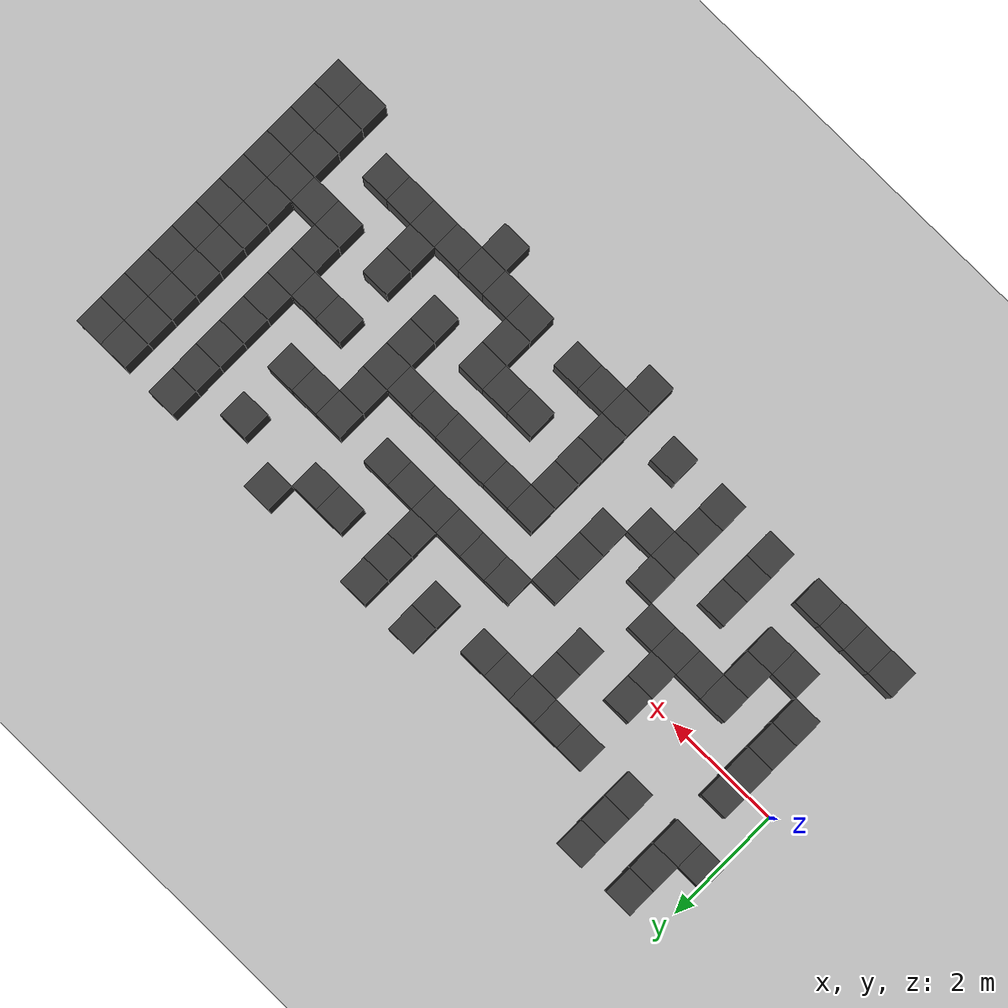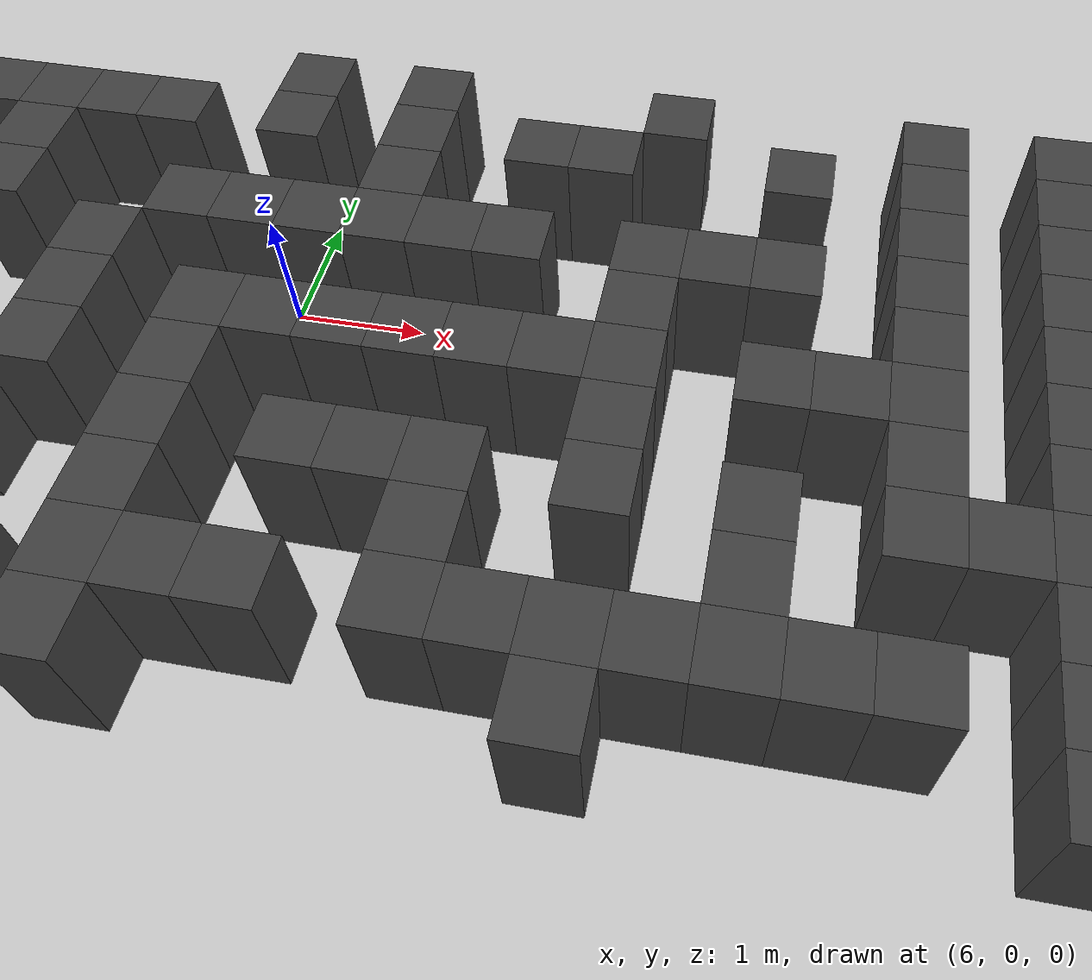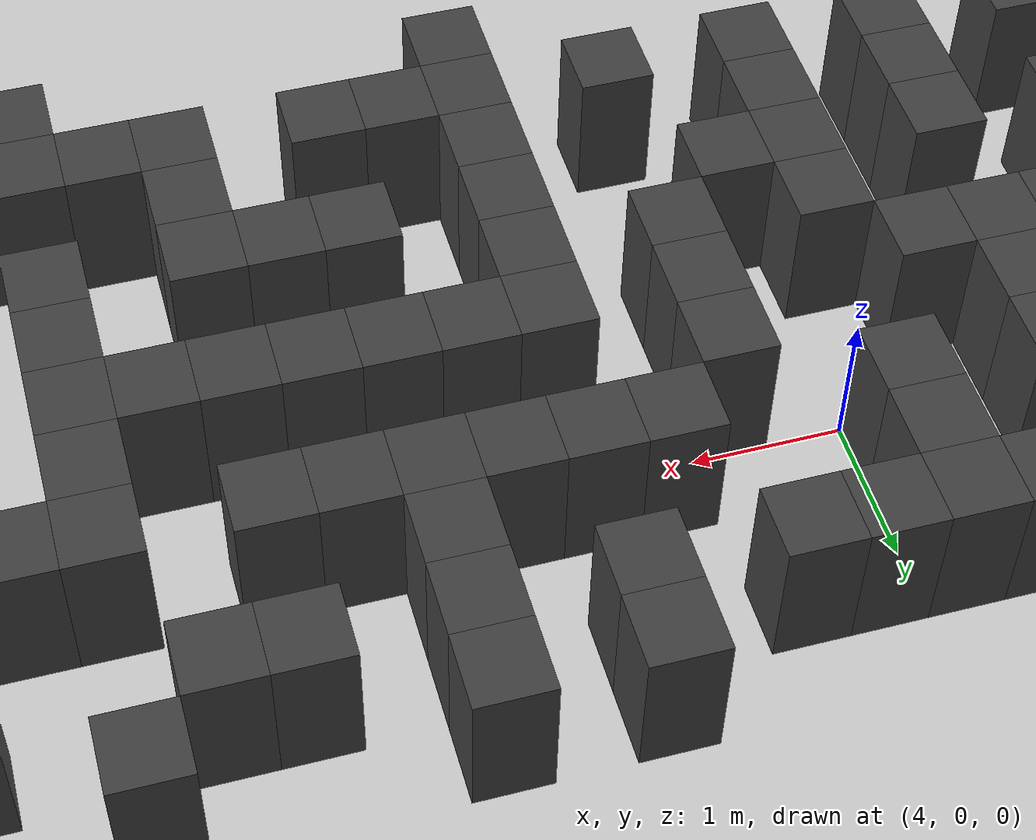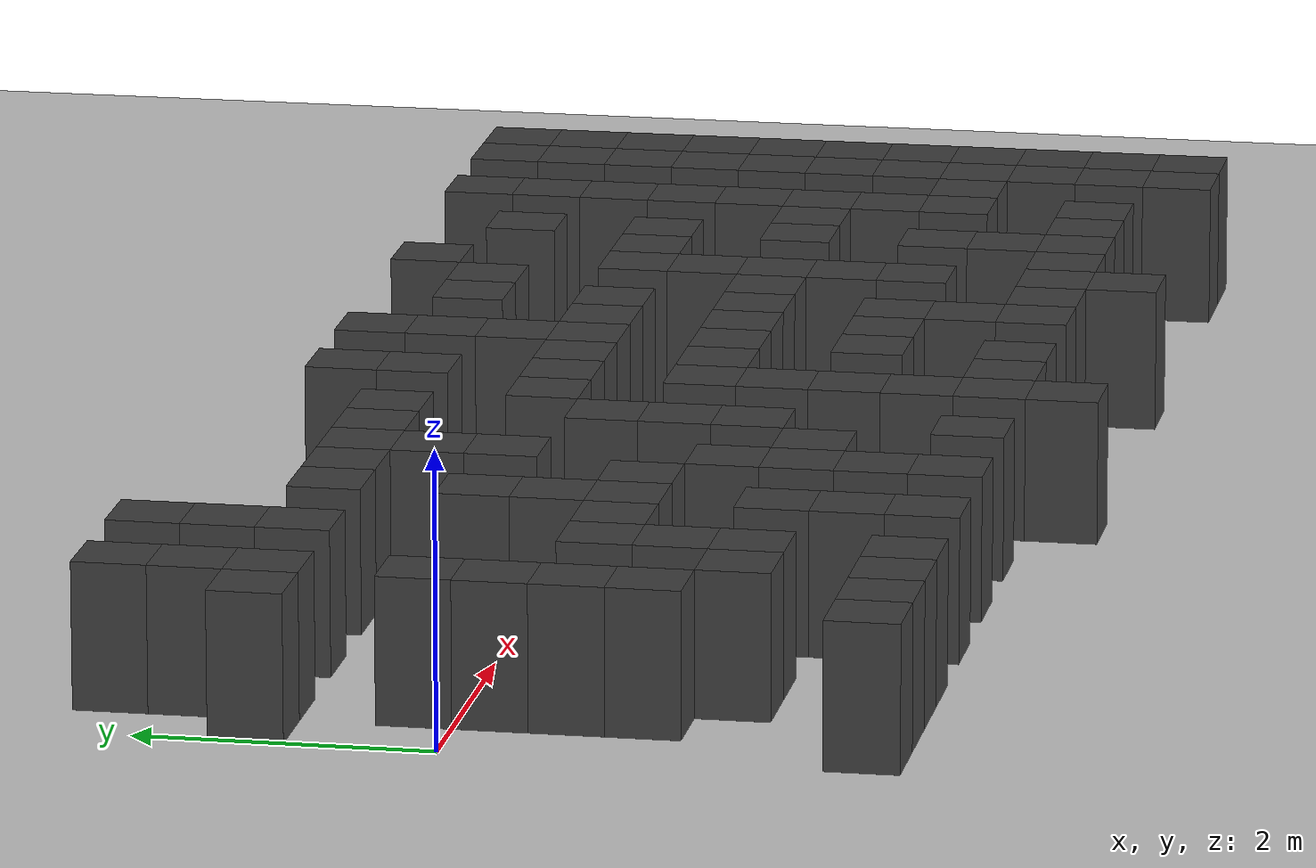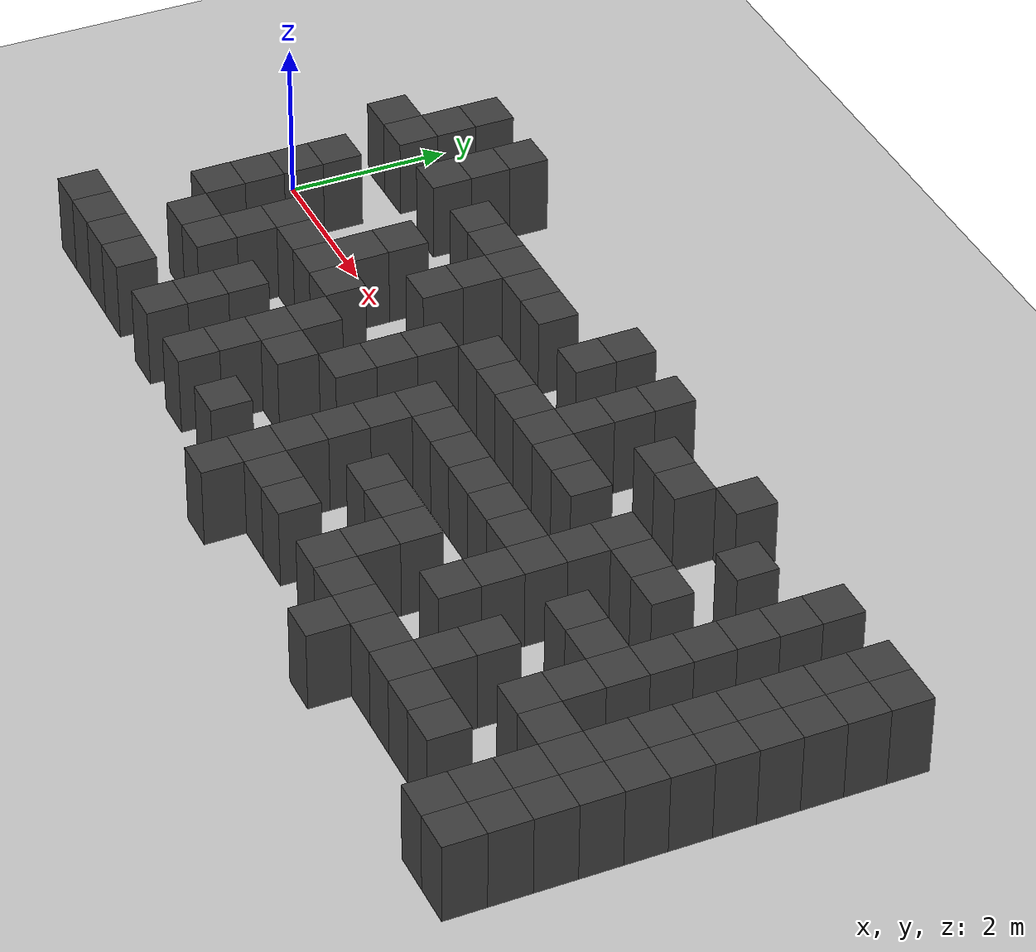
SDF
<sdf version="1.7">
 <world name="map_16668">
  <model name="ground_plane">
   <static>true</static>
   <link name="link">
    <collision name="collision">
     <geometry><plane><normal>0 0 1</normal><size>200 200</size></plane></geometry>
    </collision>
    <visual name="visual">
     <geometry><plane><normal>0 0 1</normal><size>200 200</size></plane></geometry>
     <material><ambient>0.8 0.8 0.8 1</ambient><diffuse>0.8 0.8 0.8 1</diffuse></material>
    </visual>
   </link>
  </model>
  <model name="maze_environment">
   <static>true</static>
   <link name="wall_499">
    <pose>0.750 2.250 0.500 0 0 0</pose>
    <collision name="col"><geometry><box><size>0.5 0.5 1.0</size></box></geometry></collision>
    <visual name="vis">
     <geometry><box><size>0.5 0.5 1.0</size></box></geometry>
     <material><ambient>0.15 0.15 0.15 1</ambient><diffuse>0.25 0.25 0.25 1</diffuse></material>
    </visual>
   </link>
   <link name="wall_500">
    <pose>1.750 2.250 0.500 0 0 0</pose>
    <collision name="col"><geometry><box><size>0.5 0.5 1.0</size></box></geometry></collision>
    <visual name="vis">
     <geometry><box><size>0.5 0.5 1.0</size></box></geometry>
     <material><ambient>0.15 0.15 0.15 1</ambient><diffuse>0.25 0.25 0.25 1</diffuse></material>
    </visual>
   </link>
   <link name="wall_520">
    <pose>0.750 1.750 0.500 0 0 0</pose>
    <collision name="col"><geometry><box><size>0.5 0.5 1.0</size></box></geometry></collision>
    <visual name="vis">
     <geometry><box><size>0.5 0.5 1.0</size></box></geometry>
     <material><ambient>0.15 0.15 0.15 1</ambient><diffuse>0.25 0.25 0.25 1</diffuse></material>
    </visual>
   </link>
   <link name="wall_521">
    <pose>1.750 1.750 0.500 0 0 0</pose>
    <collision name="col"><geometry><box><size>0.5 0.5 1.0</size></box></geometry></collision>
    <visual name="vis">
     <geometry><box><size>0.5 0.5 1.0</size></box></geometry>
     <material><ambient>0.15 0.15 0.15 1</ambient><diffuse>0.25 0.25 0.25 1</diffuse></material>
    </visual>
   </link>
   <link name="wall_522">
    <pose>5.750 1.750 0.500 0 0 0</pose>
    <collision name="col"><geometry><box><size>0.5 0.5 1.0</size></box></geometry></collision>
    <visual name="vis">
     <geometry><box><size>0.5 0.5 1.0</size></box></geometry>
     <material><ambient>0.15 0.15 0.15 1</ambient><diffuse>0.25 0.25 0.25 1</diffuse></material>
    </visual>
   </link>
   <link name="wall_523">
    <pose>6.750 1.750 0.500 0 0 0</pose>
    <collision name="col"><geometry><box><size>0.5 0.5 1.0</size></box></geometry></collision>
    <visual name="vis">
     <geometry><box><size>0.5 0.5 1.0</size></box></geometry>
     <material><ambient>0.15 0.15 0.15 1</ambient><diffuse>0.25 0.25 0.25 1</diffuse></material>
    </visual>
   </link>
   <link name="wall_524">
    <pose>8.750 1.750 0.500 0 0 0</pose>
    <collision name="col"><geometry><box><size>0.5 0.5 1.0</size></box></geometry></collision>
    <visual name="vis">
     <geometry><box><size>0.5 0.5 1.0</size></box></geometry>
     <material><ambient>0.15 0.15 0.15 1</ambient><diffuse>0.25 0.25 0.25 1</diffuse></material>
    </visual>
   </link>
   <link name="wall_525">
    <pose>10.750 1.750 0.500 0 0 0</pose>
    <collision name="col"><geometry><box><size>0.5 0.5 1.0</size></box></geometry></collision>
    <visual name="vis">
     <geometry><box><size>0.5 0.5 1.0</size></box></geometry>
     <material><ambient>0.15 0.15 0.15 1</ambient><diffuse>0.25 0.25 0.25 1</diffuse></material>
    </visual>
   </link>
   <link name="wall_526">
    <pose>11.750 1.750 0.500 0 0 0</pose>
    <collision name="col"><geometry><box><size>0.5 0.5 1.0</size></box></geometry></collision>
    <visual name="vis">
     <geometry><box><size>0.5 0.5 1.0</size></box></geometry>
     <material><ambient>0.15 0.15 0.15 1</ambient><diffuse>0.25 0.25 0.25 1</diffuse></material>
    </visual>
   </link>
   <link name="wall_527">
    <pose>12.250 1.750 0.500 0 0 0</pose>
    <collision name="col"><geometry><box><size>0.5 0.5 1.0</size></box></geometry></collision>
    <visual name="vis">
     <geometry><box><size>0.5 0.5 1.0</size></box></geometry>
     <material><ambient>0.15 0.15 0.15 1</ambient><diffuse>0.25 0.25 0.25 1</diffuse></material>
    </visual>
   </link>
   <link name="wall_549">
    <pose>0.250 1.250 0.500 0 0 0</pose>
    <collision name="col"><geometry><box><size>0.5 0.5 1.0</size></box></geometry></collision>
    <visual name="vis">
     <geometry><box><size>0.5 0.5 1.0</size></box></geometry>
     <material><ambient>0.15 0.15 0.15 1</ambient><diffuse>0.25 0.25 0.25 1</diffuse></material>
    </visual>
   </link>
   <link name="wall_550">
    <pose>0.750 1.250 0.500 0 0 0</pose>
    <collision name="col"><geometry><box><size>0.5 0.5 1.0</size></box></geometry></collision>
    <visual name="vis">
     <geometry><box><size>0.5 0.5 1.0</size></box></geometry>
     <material><ambient>0.15 0.15 0.15 1</ambient><diffuse>0.25 0.25 0.25 1</diffuse></material>
    </visual>
   </link>
   <link name="wall_551">
    <pose>1.750 1.250 0.500 0 0 0</pose>
    <collision name="col"><geometry><box><size>0.5 0.5 1.0</size></box></geometry></collision>
    <visual name="vis">
     <geometry><box><size>0.5 0.5 1.0</size></box></geometry>
     <material><ambient>0.15 0.15 0.15 1</ambient><diffuse>0.25 0.25 0.25 1</diffuse></material>
    </visual>
   </link>
   <link name="wall_552">
    <pose>2.750 1.250 0.500 0 0 0</pose>
    <collision name="col"><geometry><box><size>0.5 0.5 1.0</size></box></geometry></collision>
    <visual name="vis">
     <geometry><box><size>0.5 0.5 1.0</size></box></geometry>
     <material><ambient>0.15 0.15 0.15 1</ambient><diffuse>0.25 0.25 0.25 1</diffuse></material>
    </visual>
   </link>
   <link name="wall_553">
    <pose>3.250 1.250 0.500 0 0 0</pose>
    <collision name="col"><geometry><box><size>0.5 0.5 1.0</size></box></geometry></collision>
    <visual name="vis">
     <geometry><box><size>0.5 0.5 1.0</size></box></geometry>
     <material><ambient>0.15 0.15 0.15 1</ambient><diffuse>0.25 0.25 0.25 1</diffuse></material>
    </visual>
   </link>
   <link name="wall_554">
    <pose>3.750 1.250 0.500 0 0 0</pose>
    <collision name="col"><geometry><box><size>0.5 0.5 1.0</size></box></geometry></collision>
    <visual name="vis">
     <geometry><box><size>0.5 0.5 1.0</size></box></geometry>
     <material><ambient>0.15 0.15 0.15 1</ambient><diffuse>0.25 0.25 0.25 1</diffuse></material>
    </visual>
   </link>
   <link name="wall_555">
    <pose>4.250 1.250 0.500 0 0 0</pose>
    <collision name="col"><geometry><box><size>0.5 0.5 1.0</size></box></geometry></collision>
    <visual name="vis">
     <geometry><box><size>0.5 0.5 1.0</size></box></geometry>
     <material><ambient>0.15 0.15 0.15 1</ambient><diffuse>0.25 0.25 0.25 1</diffuse></material>
    </visual>
   </link>
   <link name="wall_556">
    <pose>4.750 1.250 0.500 0 0 0</pose>
    <collision name="col"><geometry><box><size>0.5 0.5 1.0</size></box></geometry></collision>
    <visual name="vis">
     <geometry><box><size>0.5 0.5 1.0</size></box></geometry>
     <material><ambient>0.15 0.15 0.15 1</ambient><diffuse>0.25 0.25 0.25 1</diffuse></material>
    </visual>
   </link>
   <link name="wall_557">
    <pose>5.750 1.250 0.500 0 0 0</pose>
    <collision name="col"><geometry><box><size>0.5 0.5 1.0</size></box></geometry></collision>
    <visual name="vis">
     <geometry><box><size>0.5 0.5 1.0</size></box></geometry>
     <material><ambient>0.15 0.15 0.15 1</ambient><diffuse>0.25 0.25 0.25 1</diffuse></material>
    </visual>
   </link>
   <link name="wall_558">
    <pose>6.750 1.250 0.500 0 0 0</pose>
    <collision name="col"><geometry><box><size>0.5 0.5 1.0</size></box></geometry></collision>
    <visual name="vis">
     <geometry><box><size>0.5 0.5 1.0</size></box></geometry>
     <material><ambient>0.15 0.15 0.15 1</ambient><diffuse>0.25 0.25 0.25 1</diffuse></material>
    </visual>
   </link>
   <link name="wall_559">
    <pose>7.750 1.250 0.500 0 0 0</pose>
    <collision name="col"><geometry><box><size>0.5 0.5 1.0</size></box></geometry></collision>
    <visual name="vis">
     <geometry><box><size>0.5 0.5 1.0</size></box></geometry>
     <material><ambient>0.15 0.15 0.15 1</ambient><diffuse>0.25 0.25 0.25 1</diffuse></material>
    </visual>
   </link>
   <link name="wall_560">
    <pose>8.250 1.250 0.500 0 0 0</pose>
    <collision name="col"><geometry><box><size>0.5 0.5 1.0</size></box></geometry></collision>
    <visual name="vis">
     <geometry><box><size>0.5 0.5 1.0</size></box></geometry>
     <material><ambient>0.15 0.15 0.15 1</ambient><diffuse>0.25 0.25 0.25 1</diffuse></material>
    </visual>
   </link>
   <link name="wall_561">
    <pose>9.750 1.250 0.500 0 0 0</pose>
    <collision name="col"><geometry><box><size>0.5 0.5 1.0</size></box></geometry></collision>
    <visual name="vis">
     <geometry><box><size>0.5 0.5 1.0</size></box></geometry>
     <material><ambient>0.15 0.15 0.15 1</ambient><diffuse>0.25 0.25 0.25 1</diffuse></material>
    </visual>
   </link>
   <link name="wall_562">
    <pose>10.750 1.250 0.500 0 0 0</pose>
    <collision name="col"><geometry><box><size>0.5 0.5 1.0</size></box></geometry></collision>
    <visual name="vis">
     <geometry><box><size>0.5 0.5 1.0</size></box></geometry>
     <material><ambient>0.15 0.15 0.15 1</ambient><diffuse>0.25 0.25 0.25 1</diffuse></material>
    </visual>
   </link>
   <link name="wall_563">
    <pose>11.750 1.250 0.500 0 0 0</pose>
    <collision name="col"><geometry><box><size>0.5 0.5 1.0</size></box></geometry></collision>
    <visual name="vis">
     <geometry><box><size>0.5 0.5 1.0</size></box></geometry>
     <material><ambient>0.15 0.15 0.15 1</ambient><diffuse>0.25 0.25 0.25 1</diffuse></material>
    </visual>
   </link>
   <link name="wall_564">
    <pose>12.250 1.250 0.500 0 0 0</pose>
    <collision name="col"><geometry><box><size>0.5 0.5 1.0</size></box></geometry></collision>
    <visual name="vis">
     <geometry><box><size>0.5 0.5 1.0</size></box></geometry>
     <material><ambient>0.15 0.15 0.15 1</ambient><diffuse>0.25 0.25 0.25 1</diffuse></material>
    </visual>
   </link>
   <link name="wall_570">
    <pose>3.750 0.750 0.500 0 0 0</pose>
    <collision name="col"><geometry><box><size>0.5 0.5 1.0</size></box></geometry></collision>
    <visual name="vis">
     <geometry><box><size>0.5 0.5 1.0</size></box></geometry>
     <material><ambient>0.15 0.15 0.15 1</ambient><diffuse>0.25 0.25 0.25 1</diffuse></material>
    </visual>
   </link>
   <link name="wall_571">
    <pose>6.750 0.750 0.500 0 0 0</pose>
    <collision name="col"><geometry><box><size>0.5 0.5 1.0</size></box></geometry></collision>
    <visual name="vis">
     <geometry><box><size>0.5 0.5 1.0</size></box></geometry>
     <material><ambient>0.15 0.15 0.15 1</ambient><diffuse>0.25 0.25 0.25 1</diffuse></material>
    </visual>
   </link>
   <link name="wall_572">
    <pose>10.750 0.750 0.500 0 0 0</pose>
    <collision name="col"><geometry><box><size>0.5 0.5 1.0</size></box></geometry></collision>
    <visual name="vis">
     <geometry><box><size>0.5 0.5 1.0</size></box></geometry>
     <material><ambient>0.15 0.15 0.15 1</ambient><diffuse>0.25 0.25 0.25 1</diffuse></material>
    </visual>
   </link>
   <link name="wall_573">
    <pose>11.750 0.750 0.500 0 0 0</pose>
    <collision name="col"><geometry><box><size>0.5 0.5 1.0</size></box></geometry></collision>
    <visual name="vis">
     <geometry><box><size>0.5 0.5 1.0</size></box></geometry>
     <material><ambient>0.15 0.15 0.15 1</ambient><diffuse>0.25 0.25 0.25 1</diffuse></material>
    </visual>
   </link>
   <link name="wall_574">
    <pose>12.250 0.750 0.500 0 0 0</pose>
    <collision name="col"><geometry><box><size>0.5 0.5 1.0</size></box></geometry></collision>
    <visual name="vis">
     <geometry><box><size>0.5 0.5 1.0</size></box></geometry>
     <material><ambient>0.15 0.15 0.15 1</ambient><diffuse>0.25 0.25 0.25 1</diffuse></material>
    </visual>
   </link>
   <link name="wall_590">
    <pose>0.750 0.250 0.500 0 0 0</pose>
    <collision name="col"><geometry><box><size>0.5 0.5 1.0</size></box></geometry></collision>
    <visual name="vis">
     <geometry><box><size>0.5 0.5 1.0</size></box></geometry>
     <material><ambient>0.15 0.15 0.15 1</ambient><diffuse>0.25 0.25 0.25 1</diffuse></material>
    </visual>
   </link>
   <link name="wall_591">
    <pose>2.750 0.250 0.500 0 0 0</pose>
    <collision name="col"><geometry><box><size>0.5 0.5 1.0</size></box></geometry></collision>
    <visual name="vis">
     <geometry><box><size>0.5 0.5 1.0</size></box></geometry>
     <material><ambient>0.15 0.15 0.15 1</ambient><diffuse>0.25 0.25 0.25 1</diffuse></material>
    </visual>
   </link>
   <link name="wall_592">
    <pose>3.750 0.250 0.500 0 0 0</pose>
    <collision name="col"><geometry><box><size>0.5 0.5 1.0</size></box></geometry></collision>
    <visual name="vis">
     <geometry><box><size>0.5 0.5 1.0</size></box></geometry>
     <material><ambient>0.15 0.15 0.15 1</ambient><diffuse>0.25 0.25 0.25 1</diffuse></material>
    </visual>
   </link>
   <link name="wall_593">
    <pose>5.250 0.250 0.500 0 0 0</pose>
    <collision name="col"><geometry><box><size>0.5 0.5 1.0</size></box></geometry></collision>
    <visual name="vis">
     <geometry><box><size>0.5 0.5 1.0</size></box></geometry>
     <material><ambient>0.15 0.15 0.15 1</ambient><diffuse>0.25 0.25 0.25 1</diffuse></material>
    </visual>
   </link>
   <link name="wall_594">
    <pose>5.750 0.250 0.500 0 0 0</pose>
    <collision name="col"><geometry><box><size>0.5 0.5 1.0</size></box></geometry></collision>
    <visual name="vis">
     <geometry><box><size>0.5 0.5 1.0</size></box></geometry>
     <material><ambient>0.15 0.15 0.15 1</ambient><diffuse>0.25 0.25 0.25 1</diffuse></material>
    </visual>
   </link>
   <link name="wall_595">
    <pose>6.250 0.250 0.500 0 0 0</pose>
    <collision name="col"><geometry><box><size>0.5 0.5 1.0</size></box></geometry></collision>
    <visual name="vis">
     <geometry><box><size>0.5 0.5 1.0</size></box></geometry>
     <material><ambient>0.15 0.15 0.15 1</ambient><diffuse>0.25 0.25 0.25 1</diffuse></material>
    </visual>
   </link>
   <link name="wall_596">
    <pose>6.750 0.250 0.500 0 0 0</pose>
    <collision name="col"><geometry><box><size>0.5 0.5 1.0</size></box></geometry></collision>
    <visual name="vis">
     <geometry><box><size>0.5 0.5 1.0</size></box></geometry>
     <material><ambient>0.15 0.15 0.15 1</ambient><diffuse>0.25 0.25 0.25 1</diffuse></material>
    </visual>
   </link>
   <link name="wall_597">
    <pose>7.250 0.250 0.500 0 0 0</pose>
    <collision name="col"><geometry><box><size>0.5 0.5 1.0</size></box></geometry></collision>
    <visual name="vis">
     <geometry><box><size>0.5 0.5 1.0</size></box></geometry>
     <material><ambient>0.15 0.15 0.15 1</ambient><diffuse>0.25 0.25 0.25 1</diffuse></material>
    </visual>
   </link>
   <link name="wall_598">
    <pose>7.750 0.250 0.500 0 0 0</pose>
    <collision name="col"><geometry><box><size>0.5 0.5 1.0</size></box></geometry></collision>
    <visual name="vis">
     <geometry><box><size>0.5 0.5 1.0</size></box></geometry>
     <material><ambient>0.15 0.15 0.15 1</ambient><diffuse>0.25 0.25 0.25 1</diffuse></material>
    </visual>
   </link>
   <link name="wall_599">
    <pose>8.750 0.250 0.500 0 0 0</pose>
    <collision name="col"><geometry><box><size>0.5 0.5 1.0</size></box></geometry></collision>
    <visual name="vis">
     <geometry><box><size>0.5 0.5 1.0</size></box></geometry>
     <material><ambient>0.15 0.15 0.15 1</ambient><diffuse>0.25 0.25 0.25 1</diffuse></material>
    </visual>
   </link>
   <link name="wall_600">
    <pose>9.250 0.250 0.500 0 0 0</pose>
    <collision name="col"><geometry><box><size>0.5 0.5 1.0</size></box></geometry></collision>
    <visual name="vis">
     <geometry><box><size>0.5 0.5 1.0</size></box></geometry>
     <material><ambient>0.15 0.15 0.15 1</ambient><diffuse>0.25 0.25 0.25 1</diffuse></material>
    </visual>
   </link>
   <link name="wall_601">
    <pose>9.750 0.250 0.500 0 0 0</pose>
    <collision name="col"><geometry><box><size>0.5 0.5 1.0</size></box></geometry></collision>
    <visual name="vis">
     <geometry><box><size>0.5 0.5 1.0</size></box></geometry>
     <material><ambient>0.15 0.15 0.15 1</ambient><diffuse>0.25 0.25 0.25 1</diffuse></material>
    </visual>
   </link>
   <link name="wall_602">
    <pose>10.750 0.250 0.500 0 0 0</pose>
    <collision name="col"><geometry><box><size>0.5 0.5 1.0</size></box></geometry></collision>
    <visual name="vis">
     <geometry><box><size>0.5 0.5 1.0</size></box></geometry>
     <material><ambient>0.15 0.15 0.15 1</ambient><diffuse>0.25 0.25 0.25 1</diffuse></material>
    </visual>
   </link>
   <link name="wall_603">
    <pose>11.750 0.250 0.500 0 0 0</pose>
    <collision name="col"><geometry><box><size>0.5 0.5 1.0</size></box></geometry></collision>
    <visual name="vis">
     <geometry><box><size>0.5 0.5 1.0</size></box></geometry>
     <material><ambient>0.15 0.15 0.15 1</ambient><diffuse>0.25 0.25 0.25 1</diffuse></material>
    </visual>
   </link>
   <link name="wall_604">
    <pose>12.250 0.250 0.500 0 0 0</pose>
    <collision name="col"><geometry><box><size>0.5 0.5 1.0</size></box></geometry></collision>
    <visual name="vis">
     <geometry><box><size>0.5 0.5 1.0</size></box></geometry>
     <material><ambient>0.15 0.15 0.15 1</ambient><diffuse>0.25 0.25 0.25 1</diffuse></material>
    </visual>
   </link>
   <link name="wall_611">
    <pose>0.750 -0.250 0.500 0 0 0</pose>
    <collision name="col"><geometry><box><size>0.5 0.5 1.0</size></box></geometry></collision>
    <visual name="vis">
     <geometry><box><size>0.5 0.5 1.0</size></box></geometry>
     <material><ambient>0.15 0.15 0.15 1</ambient><diffuse>0.25 0.25 0.25 1</diffuse></material>
    </visual>
   </link>
   <link name="wall_612">
    <pose>2.750 -0.250 0.500 0 0 0</pose>
    <collision name="col"><geometry><box><size>0.5 0.5 1.0</size></box></geometry></collision>
    <visual name="vis">
     <geometry><box><size>0.5 0.5 1.0</size></box></geometry>
     <material><ambient>0.15 0.15 0.15 1</ambient><diffuse>0.25 0.25 0.25 1</diffuse></material>
    </visual>
   </link>
   <link name="wall_613">
    <pose>4.750 -0.250 0.500 0 0 0</pose>
    <collision name="col"><geometry><box><size>0.5 0.5 1.0</size></box></geometry></collision>
    <visual name="vis">
     <geometry><box><size>0.5 0.5 1.0</size></box></geometry>
     <material><ambient>0.15 0.15 0.15 1</ambient><diffuse>0.25 0.25 0.25 1</diffuse></material>
    </visual>
   </link>
   <link name="wall_614">
    <pose>8.750 -0.250 0.500 0 0 0</pose>
    <collision name="col"><geometry><box><size>0.5 0.5 1.0</size></box></geometry></collision>
    <visual name="vis">
     <geometry><box><size>0.5 0.5 1.0</size></box></geometry>
     <material><ambient>0.15 0.15 0.15 1</ambient><diffuse>0.25 0.25 0.25 1</diffuse></material>
    </visual>
   </link>
   <link name="wall_615">
    <pose>10.750 -0.250 0.500 0 0 0</pose>
    <collision name="col"><geometry><box><size>0.5 0.5 1.0</size></box></geometry></collision>
    <visual name="vis">
     <geometry><box><size>0.5 0.5 1.0</size></box></geometry>
     <material><ambient>0.15 0.15 0.15 1</ambient><diffuse>0.25 0.25 0.25 1</diffuse></material>
    </visual>
   </link>
   <link name="wall_616">
    <pose>11.750 -0.250 0.500 0 0 0</pose>
    <collision name="col"><geometry><box><size>0.5 0.5 1.0</size></box></geometry></collision>
    <visual name="vis">
     <geometry><box><size>0.5 0.5 1.0</size></box></geometry>
     <material><ambient>0.15 0.15 0.15 1</ambient><diffuse>0.25 0.25 0.25 1</diffuse></material>
    </visual>
   </link>
   <link name="wall_617">
    <pose>12.250 -0.250 0.500 0 0 0</pose>
    <collision name="col"><geometry><box><size>0.5 0.5 1.0</size></box></geometry></collision>
    <visual name="vis">
     <geometry><box><size>0.5 0.5 1.0</size></box></geometry>
     <material><ambient>0.15 0.15 0.15 1</ambient><diffuse>0.25 0.25 0.25 1</diffuse></material>
    </visual>
   </link>
   <link name="wall_635">
    <pose>0.750 -0.750 0.500 0 0 0</pose>
    <collision name="col"><geometry><box><size>0.5 0.5 1.0</size></box></geometry></collision>
    <visual name="vis">
     <geometry><box><size>0.5 0.5 1.0</size></box></geometry>
     <material><ambient>0.15 0.15 0.15 1</ambient><diffuse>0.25 0.25 0.25 1</diffuse></material>
    </visual>
   </link>
   <link name="wall_636">
    <pose>1.750 -0.750 0.500 0 0 0</pose>
    <collision name="col"><geometry><box><size>0.5 0.5 1.0</size></box></geometry></collision>
    <visual name="vis">
     <geometry><box><size>0.5 0.5 1.0</size></box></geometry>
     <material><ambient>0.15 0.15 0.15 1</ambient><diffuse>0.25 0.25 0.25 1</diffuse></material>
    </visual>
   </link>
   <link name="wall_637">
    <pose>2.250 -0.750 0.500 0 0 0</pose>
    <collision name="col"><geometry><box><size>0.5 0.5 1.0</size></box></geometry></collision>
    <visual name="vis">
     <geometry><box><size>0.5 0.5 1.0</size></box></geometry>
     <material><ambient>0.15 0.15 0.15 1</ambient><diffuse>0.25 0.25 0.25 1</diffuse></material>
    </visual>
   </link>
   <link name="wall_638">
    <pose>2.750 -0.750 0.500 0 0 0</pose>
    <collision name="col"><geometry><box><size>0.5 0.5 1.0</size></box></geometry></collision>
    <visual name="vis">
     <geometry><box><size>0.5 0.5 1.0</size></box></geometry>
     <material><ambient>0.15 0.15 0.15 1</ambient><diffuse>0.25 0.25 0.25 1</diffuse></material>
    </visual>
   </link>
   <link name="wall_639">
    <pose>3.250 -0.750 0.500 0 0 0</pose>
    <collision name="col"><geometry><box><size>0.5 0.5 1.0</size></box></geometry></collision>
    <visual name="vis">
     <geometry><box><size>0.5 0.5 1.0</size></box></geometry>
     <material><ambient>0.15 0.15 0.15 1</ambient><diffuse>0.25 0.25 0.25 1</diffuse></material>
    </visual>
   </link>
   <link name="wall_640">
    <pose>4.750 -0.750 0.500 0 0 0</pose>
    <collision name="col"><geometry><box><size>0.5 0.5 1.0</size></box></geometry></collision>
    <visual name="vis">
     <geometry><box><size>0.5 0.5 1.0</size></box></geometry>
     <material><ambient>0.15 0.15 0.15 1</ambient><diffuse>0.25 0.25 0.25 1</diffuse></material>
    </visual>
   </link>
   <link name="wall_641">
    <pose>5.750 -0.750 0.500 0 0 0</pose>
    <collision name="col"><geometry><box><size>0.5 0.5 1.0</size></box></geometry></collision>
    <visual name="vis">
     <geometry><box><size>0.5 0.5 1.0</size></box></geometry>
     <material><ambient>0.15 0.15 0.15 1</ambient><diffuse>0.25 0.25 0.25 1</diffuse></material>
    </visual>
   </link>
   <link name="wall_642">
    <pose>6.250 -0.750 0.500 0 0 0</pose>
    <collision name="col"><geometry><box><size>0.5 0.5 1.0</size></box></geometry></collision>
    <visual name="vis">
     <geometry><box><size>0.5 0.5 1.0</size></box></geometry>
     <material><ambient>0.15 0.15 0.15 1</ambient><diffuse>0.25 0.25 0.25 1</diffuse></material>
    </visual>
   </link>
   <link name="wall_643">
    <pose>6.750 -0.750 0.500 0 0 0</pose>
    <collision name="col"><geometry><box><size>0.5 0.5 1.0</size></box></geometry></collision>
    <visual name="vis">
     <geometry><box><size>0.5 0.5 1.0</size></box></geometry>
     <material><ambient>0.15 0.15 0.15 1</ambient><diffuse>0.25 0.25 0.25 1</diffuse></material>
    </visual>
   </link>
   <link name="wall_644">
    <pose>7.250 -0.750 0.500 0 0 0</pose>
    <collision name="col"><geometry><box><size>0.5 0.5 1.0</size></box></geometry></collision>
    <visual name="vis">
     <geometry><box><size>0.5 0.5 1.0</size></box></geometry>
     <material><ambient>0.15 0.15 0.15 1</ambient><diffuse>0.25 0.25 0.25 1</diffuse></material>
    </visual>
   </link>
   <link name="wall_645">
    <pose>7.750 -0.750 0.500 0 0 0</pose>
    <collision name="col"><geometry><box><size>0.5 0.5 1.0</size></box></geometry></collision>
    <visual name="vis">
     <geometry><box><size>0.5 0.5 1.0</size></box></geometry>
     <material><ambient>0.15 0.15 0.15 1</ambient><diffuse>0.25 0.25 0.25 1</diffuse></material>
    </visual>
   </link>
   <link name="wall_646">
    <pose>8.250 -0.750 0.500 0 0 0</pose>
    <collision name="col"><geometry><box><size>0.5 0.5 1.0</size></box></geometry></collision>
    <visual name="vis">
     <geometry><box><size>0.5 0.5 1.0</size></box></geometry>
     <material><ambient>0.15 0.15 0.15 1</ambient><diffuse>0.25 0.25 0.25 1</diffuse></material>
    </visual>
   </link>
   <link name="wall_647">
    <pose>8.750 -0.750 0.500 0 0 0</pose>
    <collision name="col"><geometry><box><size>0.5 0.5 1.0</size></box></geometry></collision>
    <visual name="vis">
     <geometry><box><size>0.5 0.5 1.0</size></box></geometry>
     <material><ambient>0.15 0.15 0.15 1</ambient><diffuse>0.25 0.25 0.25 1</diffuse></material>
    </visual>
   </link>
   <link name="wall_648">
    <pose>9.750 -0.750 0.500 0 0 0</pose>
    <collision name="col"><geometry><box><size>0.5 0.5 1.0</size></box></geometry></collision>
    <visual name="vis">
     <geometry><box><size>0.5 0.5 1.0</size></box></geometry>
     <material><ambient>0.15 0.15 0.15 1</ambient><diffuse>0.25 0.25 0.25 1</diffuse></material>
    </visual>
   </link>
   <link name="wall_649">
    <pose>10.250 -0.750 0.500 0 0 0</pose>
    <collision name="col"><geometry><box><size>0.5 0.5 1.0</size></box></geometry></collision>
    <visual name="vis">
     <geometry><box><size>0.5 0.5 1.0</size></box></geometry>
     <material><ambient>0.15 0.15 0.15 1</ambient><diffuse>0.25 0.25 0.25 1</diffuse></material>
    </visual>
   </link>
   <link name="wall_650">
    <pose>10.750 -0.750 0.500 0 0 0</pose>
    <collision name="col"><geometry><box><size>0.5 0.5 1.0</size></box></geometry></collision>
    <visual name="vis">
     <geometry><box><size>0.5 0.5 1.0</size></box></geometry>
     <material><ambient>0.15 0.15 0.15 1</ambient><diffuse>0.25 0.25 0.25 1</diffuse></material>
    </visual>
   </link>
   <link name="wall_651">
    <pose>11.750 -0.750 0.500 0 0 0</pose>
    <collision name="col"><geometry><box><size>0.5 0.5 1.0</size></box></geometry></collision>
    <visual name="vis">
     <geometry><box><size>0.5 0.5 1.0</size></box></geometry>
     <material><ambient>0.15 0.15 0.15 1</ambient><diffuse>0.25 0.25 0.25 1</diffuse></material>
    </visual>
   </link>
   <link name="wall_652">
    <pose>12.250 -0.750 0.500 0 0 0</pose>
    <collision name="col"><geometry><box><size>0.5 0.5 1.0</size></box></geometry></collision>
    <visual name="vis">
     <geometry><box><size>0.5 0.5 1.0</size></box></geometry>
     <material><ambient>0.15 0.15 0.15 1</ambient><diffuse>0.25 0.25 0.25 1</diffuse></material>
    </visual>
   </link>
   <link name="wall_660">
    <pose>0.750 -1.250 0.500 0 0 0</pose>
    <collision name="col"><geometry><box><size>0.5 0.5 1.0</size></box></geometry></collision>
    <visual name="vis">
     <geometry><box><size>0.5 0.5 1.0</size></box></geometry>
     <material><ambient>0.15 0.15 0.15 1</ambient><diffuse>0.25 0.25 0.25 1</diffuse></material>
    </visual>
   </link>
   <link name="wall_661">
    <pose>1.750 -1.250 0.500 0 0 0</pose>
    <collision name="col"><geometry><box><size>0.5 0.5 1.0</size></box></geometry></collision>
    <visual name="vis">
     <geometry><box><size>0.5 0.5 1.0</size></box></geometry>
     <material><ambient>0.15 0.15 0.15 1</ambient><diffuse>0.25 0.25 0.25 1</diffuse></material>
    </visual>
   </link>
   <link name="wall_662">
    <pose>3.750 -1.250 0.500 0 0 0</pose>
    <collision name="col"><geometry><box><size>0.5 0.5 1.0</size></box></geometry></collision>
    <visual name="vis">
     <geometry><box><size>0.5 0.5 1.0</size></box></geometry>
     <material><ambient>0.15 0.15 0.15 1</ambient><diffuse>0.25 0.25 0.25 1</diffuse></material>
    </visual>
   </link>
   <link name="wall_663">
    <pose>4.750 -1.250 0.500 0 0 0</pose>
    <collision name="col"><geometry><box><size>0.5 0.5 1.0</size></box></geometry></collision>
    <visual name="vis">
     <geometry><box><size>0.5 0.5 1.0</size></box></geometry>
     <material><ambient>0.15 0.15 0.15 1</ambient><diffuse>0.25 0.25 0.25 1</diffuse></material>
    </visual>
   </link>
   <link name="wall_664">
    <pose>5.750 -1.250 0.500 0 0 0</pose>
    <collision name="col"><geometry><box><size>0.5 0.5 1.0</size></box></geometry></collision>
    <visual name="vis">
     <geometry><box><size>0.5 0.5 1.0</size></box></geometry>
     <material><ambient>0.15 0.15 0.15 1</ambient><diffuse>0.25 0.25 0.25 1</diffuse></material>
    </visual>
   </link>
   <link name="wall_665">
    <pose>8.750 -1.250 0.500 0 0 0</pose>
    <collision name="col"><geometry><box><size>0.5 0.5 1.0</size></box></geometry></collision>
    <visual name="vis">
     <geometry><box><size>0.5 0.5 1.0</size></box></geometry>
     <material><ambient>0.15 0.15 0.15 1</ambient><diffuse>0.25 0.25 0.25 1</diffuse></material>
    </visual>
   </link>
   <link name="wall_666">
    <pose>10.750 -1.250 0.500 0 0 0</pose>
    <collision name="col"><geometry><box><size>0.5 0.5 1.0</size></box></geometry></collision>
    <visual name="vis">
     <geometry><box><size>0.5 0.5 1.0</size></box></geometry>
     <material><ambient>0.15 0.15 0.15 1</ambient><diffuse>0.25 0.25 0.25 1</diffuse></material>
    </visual>
   </link>
   <link name="wall_667">
    <pose>11.750 -1.250 0.500 0 0 0</pose>
    <collision name="col"><geometry><box><size>0.5 0.5 1.0</size></box></geometry></collision>
    <visual name="vis">
     <geometry><box><size>0.5 0.5 1.0</size></box></geometry>
     <material><ambient>0.15 0.15 0.15 1</ambient><diffuse>0.25 0.25 0.25 1</diffuse></material>
    </visual>
   </link>
   <link name="wall_668">
    <pose>12.250 -1.250 0.500 0 0 0</pose>
    <collision name="col"><geometry><box><size>0.5 0.5 1.0</size></box></geometry></collision>
    <visual name="vis">
     <geometry><box><size>0.5 0.5 1.0</size></box></geometry>
     <material><ambient>0.15 0.15 0.15 1</ambient><diffuse>0.25 0.25 0.25 1</diffuse></material>
    </visual>
   </link>
   <link name="wall_687">
    <pose>1.250 -1.750 0.500 0 0 0</pose>
    <collision name="col"><geometry><box><size>0.5 0.5 1.0</size></box></geometry></collision>
    <visual name="vis">
     <geometry><box><size>0.5 0.5 1.0</size></box></geometry>
     <material><ambient>0.15 0.15 0.15 1</ambient><diffuse>0.25 0.25 0.25 1</diffuse></material>
    </visual>
   </link>
   <link name="wall_688">
    <pose>1.750 -1.750 0.500 0 0 0</pose>
    <collision name="col"><geometry><box><size>0.5 0.5 1.0</size></box></geometry></collision>
    <visual name="vis">
     <geometry><box><size>0.5 0.5 1.0</size></box></geometry>
     <material><ambient>0.15 0.15 0.15 1</ambient><diffuse>0.25 0.25 0.25 1</diffuse></material>
    </visual>
   </link>
   <link name="wall_689">
    <pose>2.750 -1.750 0.500 0 0 0</pose>
    <collision name="col"><geometry><box><size>0.5 0.5 1.0</size></box></geometry></collision>
    <visual name="vis">
     <geometry><box><size>0.5 0.5 1.0</size></box></geometry>
     <material><ambient>0.15 0.15 0.15 1</ambient><diffuse>0.25 0.25 0.25 1</diffuse></material>
    </visual>
   </link>
   <link name="wall_690">
    <pose>3.750 -1.750 0.500 0 0 0</pose>
    <collision name="col"><geometry><box><size>0.5 0.5 1.0</size></box></geometry></collision>
    <visual name="vis">
     <geometry><box><size>0.5 0.5 1.0</size></box></geometry>
     <material><ambient>0.15 0.15 0.15 1</ambient><diffuse>0.25 0.25 0.25 1</diffuse></material>
    </visual>
   </link>
   <link name="wall_691">
    <pose>4.250 -1.750 0.500 0 0 0</pose>
    <collision name="col"><geometry><box><size>0.5 0.5 1.0</size></box></geometry></collision>
    <visual name="vis">
     <geometry><box><size>0.5 0.5 1.0</size></box></geometry>
     <material><ambient>0.15 0.15 0.15 1</ambient><diffuse>0.25 0.25 0.25 1</diffuse></material>
    </visual>
   </link>
   <link name="wall_692">
    <pose>5.750 -1.750 0.500 0 0 0</pose>
    <collision name="col"><geometry><box><size>0.5 0.5 1.0</size></box></geometry></collision>
    <visual name="vis">
     <geometry><box><size>0.5 0.5 1.0</size></box></geometry>
     <material><ambient>0.15 0.15 0.15 1</ambient><diffuse>0.25 0.25 0.25 1</diffuse></material>
    </visual>
   </link>
   <link name="wall_693">
    <pose>6.750 -1.750 0.500 0 0 0</pose>
    <collision name="col"><geometry><box><size>0.5 0.5 1.0</size></box></geometry></collision>
    <visual name="vis">
     <geometry><box><size>0.5 0.5 1.0</size></box></geometry>
     <material><ambient>0.15 0.15 0.15 1</ambient><diffuse>0.25 0.25 0.25 1</diffuse></material>
    </visual>
   </link>
   <link name="wall_694">
    <pose>7.250 -1.750 0.500 0 0 0</pose>
    <collision name="col"><geometry><box><size>0.5 0.5 1.0</size></box></geometry></collision>
    <visual name="vis">
     <geometry><box><size>0.5 0.5 1.0</size></box></geometry>
     <material><ambient>0.15 0.15 0.15 1</ambient><diffuse>0.25 0.25 0.25 1</diffuse></material>
    </visual>
   </link>
   <link name="wall_695">
    <pose>7.750 -1.750 0.500 0 0 0</pose>
    <collision name="col"><geometry><box><size>0.5 0.5 1.0</size></box></geometry></collision>
    <visual name="vis">
     <geometry><box><size>0.5 0.5 1.0</size></box></geometry>
     <material><ambient>0.15 0.15 0.15 1</ambient><diffuse>0.25 0.25 0.25 1</diffuse></material>
    </visual>
   </link>
   <link name="wall_696">
    <pose>8.750 -1.750 0.500 0 0 0</pose>
    <collision name="col"><geometry><box><size>0.5 0.5 1.0</size></box></geometry></collision>
    <visual name="vis">
     <geometry><box><size>0.5 0.5 1.0</size></box></geometry>
     <material><ambient>0.15 0.15 0.15 1</ambient><diffuse>0.25 0.25 0.25 1</diffuse></material>
    </visual>
   </link>
   <link name="wall_697">
    <pose>9.750 -1.750 0.500 0 0 0</pose>
    <collision name="col"><geometry><box><size>0.5 0.5 1.0</size></box></geometry></collision>
    <visual name="vis">
     <geometry><box><size>0.5 0.5 1.0</size></box></geometry>
     <material><ambient>0.15 0.15 0.15 1</ambient><diffuse>0.25 0.25 0.25 1</diffuse></material>
    </visual>
   </link>
   <link name="wall_698">
    <pose>10.750 -1.750 0.500 0 0 0</pose>
    <collision name="col"><geometry><box><size>0.5 0.5 1.0</size></box></geometry></collision>
    <visual name="vis">
     <geometry><box><size>0.5 0.5 1.0</size></box></geometry>
     <material><ambient>0.15 0.15 0.15 1</ambient><diffuse>0.25 0.25 0.25 1</diffuse></material>
    </visual>
   </link>
   <link name="wall_699">
    <pose>11.250 -1.750 0.500 0 0 0</pose>
    <collision name="col"><geometry><box><size>0.5 0.5 1.0</size></box></geometry></collision>
    <visual name="vis">
     <geometry><box><size>0.5 0.5 1.0</size></box></geometry>
     <material><ambient>0.15 0.15 0.15 1</ambient><diffuse>0.25 0.25 0.25 1</diffuse></material>
    </visual>
   </link>
   <link name="wall_700">
    <pose>11.750 -1.750 0.500 0 0 0</pose>
    <collision name="col"><geometry><box><size>0.5 0.5 1.0</size></box></geometry></collision>
    <visual name="vis">
     <geometry><box><size>0.5 0.5 1.0</size></box></geometry>
     <material><ambient>0.15 0.15 0.15 1</ambient><diffuse>0.25 0.25 0.25 1</diffuse></material>
    </visual>
   </link>
   <link name="wall_701">
    <pose>12.250 -1.750 0.500 0 0 0</pose>
    <collision name="col"><geometry><box><size>0.5 0.5 1.0</size></box></geometry></collision>
    <visual name="vis">
     <geometry><box><size>0.5 0.5 1.0</size></box></geometry>
     <material><ambient>0.15 0.15 0.15 1</ambient><diffuse>0.25 0.25 0.25 1</diffuse></material>
    </visual>
   </link>
   <link name="wall_709">
    <pose>2.750 -2.250 0.500 0 0 0</pose>
    <collision name="col"><geometry><box><size>0.5 0.5 1.0</size></box></geometry></collision>
    <visual name="vis">
     <geometry><box><size>0.5 0.5 1.0</size></box></geometry>
     <material><ambient>0.15 0.15 0.15 1</ambient><diffuse>0.25 0.25 0.25 1</diffuse></material>
    </visual>
   </link>
   <link name="wall_710">
    <pose>3.750 -2.250 0.500 0 0 0</pose>
    <collision name="col"><geometry><box><size>0.5 0.5 1.0</size></box></geometry></collision>
    <visual name="vis">
     <geometry><box><size>0.5 0.5 1.0</size></box></geometry>
     <material><ambient>0.15 0.15 0.15 1</ambient><diffuse>0.25 0.25 0.25 1</diffuse></material>
    </visual>
   </link>
   <link name="wall_711">
    <pose>5.750 -2.250 0.500 0 0 0</pose>
    <collision name="col"><geometry><box><size>0.5 0.5 1.0</size></box></geometry></collision>
    <visual name="vis">
     <geometry><box><size>0.5 0.5 1.0</size></box></geometry>
     <material><ambient>0.15 0.15 0.15 1</ambient><diffuse>0.25 0.25 0.25 1</diffuse></material>
    </visual>
   </link>
   <link name="wall_712">
    <pose>7.750 -2.250 0.500 0 0 0</pose>
    <collision name="col"><geometry><box><size>0.5 0.5 1.0</size></box></geometry></collision>
    <visual name="vis">
     <geometry><box><size>0.5 0.5 1.0</size></box></geometry>
     <material><ambient>0.15 0.15 0.15 1</ambient><diffuse>0.25 0.25 0.25 1</diffuse></material>
    </visual>
   </link>
   <link name="wall_713">
    <pose>9.750 -2.250 0.500 0 0 0</pose>
    <collision name="col"><geometry><box><size>0.5 0.5 1.0</size></box></geometry></collision>
    <visual name="vis">
     <geometry><box><size>0.5 0.5 1.0</size></box></geometry>
     <material><ambient>0.15 0.15 0.15 1</ambient><diffuse>0.25 0.25 0.25 1</diffuse></material>
    </visual>
   </link>
   <link name="wall_714">
    <pose>11.750 -2.250 0.500 0 0 0</pose>
    <collision name="col"><geometry><box><size>0.5 0.5 1.0</size></box></geometry></collision>
    <visual name="vis">
     <geometry><box><size>0.5 0.5 1.0</size></box></geometry>
     <material><ambient>0.15 0.15 0.15 1</ambient><diffuse>0.25 0.25 0.25 1</diffuse></material>
    </visual>
   </link>
   <link name="wall_715">
    <pose>12.250 -2.250 0.500 0 0 0</pose>
    <collision name="col"><geometry><box><size>0.5 0.5 1.0</size></box></geometry></collision>
    <visual name="vis">
     <geometry><box><size>0.5 0.5 1.0</size></box></geometry>
     <material><ambient>0.15 0.15 0.15 1</ambient><diffuse>0.25 0.25 0.25 1</diffuse></material>
    </visual>
   </link>
   <link name="wall_734">
    <pose>0.250 -2.750 0.500 0 0 0</pose>
    <collision name="col"><geometry><box><size>0.5 0.5 1.0</size></box></geometry></collision>
    <visual name="vis">
     <geometry><box><size>0.5 0.5 1.0</size></box></geometry>
     <material><ambient>0.15 0.15 0.15 1</ambient><diffuse>0.25 0.25 0.25 1</diffuse></material>
    </visual>
   </link>
   <link name="wall_735">
    <pose>0.750 -2.750 0.500 0 0 0</pose>
    <collision name="col"><geometry><box><size>0.5 0.5 1.0</size></box></geometry></collision>
    <visual name="vis">
     <geometry><box><size>0.5 0.5 1.0</size></box></geometry>
     <material><ambient>0.15 0.15 0.15 1</ambient><diffuse>0.25 0.25 0.25 1</diffuse></material>
    </visual>
   </link>
   <link name="wall_736">
    <pose>1.250 -2.750 0.500 0 0 0</pose>
    <collision name="col"><geometry><box><size>0.5 0.5 1.0</size></box></geometry></collision>
    <visual name="vis">
     <geometry><box><size>0.5 0.5 1.0</size></box></geometry>
     <material><ambient>0.15 0.15 0.15 1</ambient><diffuse>0.25 0.25 0.25 1</diffuse></material>
    </visual>
   </link>
   <link name="wall_737">
    <pose>1.750 -2.750 0.500 0 0 0</pose>
    <collision name="col"><geometry><box><size>0.5 0.5 1.0</size></box></geometry></collision>
    <visual name="vis">
     <geometry><box><size>0.5 0.5 1.0</size></box></geometry>
     <material><ambient>0.15 0.15 0.15 1</ambient><diffuse>0.25 0.25 0.25 1</diffuse></material>
    </visual>
   </link>
   <link name="wall_738">
    <pose>2.750 -2.750 0.500 0 0 0</pose>
    <collision name="col"><geometry><box><size>0.5 0.5 1.0</size></box></geometry></collision>
    <visual name="vis">
     <geometry><box><size>0.5 0.5 1.0</size></box></geometry>
     <material><ambient>0.15 0.15 0.15 1</ambient><diffuse>0.25 0.25 0.25 1</diffuse></material>
    </visual>
   </link>
   <link name="wall_739">
    <pose>3.750 -2.750 0.500 0 0 0</pose>
    <collision name="col"><geometry><box><size>0.5 0.5 1.0</size></box></geometry></collision>
    <visual name="vis">
     <geometry><box><size>0.5 0.5 1.0</size></box></geometry>
     <material><ambient>0.15 0.15 0.15 1</ambient><diffuse>0.25 0.25 0.25 1</diffuse></material>
    </visual>
   </link>
   <link name="wall_740">
    <pose>4.750 -2.750 0.500 0 0 0</pose>
    <collision name="col"><geometry><box><size>0.5 0.5 1.0</size></box></geometry></collision>
    <visual name="vis">
     <geometry><box><size>0.5 0.5 1.0</size></box></geometry>
     <material><ambient>0.15 0.15 0.15 1</ambient><diffuse>0.25 0.25 0.25 1</diffuse></material>
    </visual>
   </link>
   <link name="wall_741">
    <pose>5.750 -2.750 0.500 0 0 0</pose>
    <collision name="col"><geometry><box><size>0.5 0.5 1.0</size></box></geometry></collision>
    <visual name="vis">
     <geometry><box><size>0.5 0.5 1.0</size></box></geometry>
     <material><ambient>0.15 0.15 0.15 1</ambient><diffuse>0.25 0.25 0.25 1</diffuse></material>
    </visual>
   </link>
   <link name="wall_742">
    <pose>6.250 -2.750 0.500 0 0 0</pose>
    <collision name="col"><geometry><box><size>0.5 0.5 1.0</size></box></geometry></collision>
    <visual name="vis">
     <geometry><box><size>0.5 0.5 1.0</size></box></geometry>
     <material><ambient>0.15 0.15 0.15 1</ambient><diffuse>0.25 0.25 0.25 1</diffuse></material>
    </visual>
   </link>
   <link name="wall_743">
    <pose>6.750 -2.750 0.500 0 0 0</pose>
    <collision name="col"><geometry><box><size>0.5 0.5 1.0</size></box></geometry></collision>
    <visual name="vis">
     <geometry><box><size>0.5 0.5 1.0</size></box></geometry>
     <material><ambient>0.15 0.15 0.15 1</ambient><diffuse>0.25 0.25 0.25 1</diffuse></material>
    </visual>
   </link>
   <link name="wall_744">
    <pose>7.750 -2.750 0.500 0 0 0</pose>
    <collision name="col"><geometry><box><size>0.5 0.5 1.0</size></box></geometry></collision>
    <visual name="vis">
     <geometry><box><size>0.5 0.5 1.0</size></box></geometry>
     <material><ambient>0.15 0.15 0.15 1</ambient><diffuse>0.25 0.25 0.25 1</diffuse></material>
    </visual>
   </link>
   <link name="wall_745">
    <pose>8.250 -2.750 0.500 0 0 0</pose>
    <collision name="col"><geometry><box><size>0.5 0.5 1.0</size></box></geometry></collision>
    <visual name="vis">
     <geometry><box><size>0.5 0.5 1.0</size></box></geometry>
     <material><ambient>0.15 0.15 0.15 1</ambient><diffuse>0.25 0.25 0.25 1</diffuse></material>
    </visual>
   </link>
   <link name="wall_746">
    <pose>8.750 -2.750 0.500 0 0 0</pose>
    <collision name="col"><geometry><box><size>0.5 0.5 1.0</size></box></geometry></collision>
    <visual name="vis">
     <geometry><box><size>0.5 0.5 1.0</size></box></geometry>
     <material><ambient>0.15 0.15 0.15 1</ambient><diffuse>0.25 0.25 0.25 1</diffuse></material>
    </visual>
   </link>
   <link name="wall_747">
    <pose>9.250 -2.750 0.500 0 0 0</pose>
    <collision name="col"><geometry><box><size>0.5 0.5 1.0</size></box></geometry></collision>
    <visual name="vis">
     <geometry><box><size>0.5 0.5 1.0</size></box></geometry>
     <material><ambient>0.15 0.15 0.15 1</ambient><diffuse>0.25 0.25 0.25 1</diffuse></material>
    </visual>
   </link>
   <link name="wall_748">
    <pose>9.750 -2.750 0.500 0 0 0</pose>
    <collision name="col"><geometry><box><size>0.5 0.5 1.0</size></box></geometry></collision>
    <visual name="vis">
     <geometry><box><size>0.5 0.5 1.0</size></box></geometry>
     <material><ambient>0.15 0.15 0.15 1</ambient><diffuse>0.25 0.25 0.25 1</diffuse></material>
    </visual>
   </link>
   <link name="wall_749">
    <pose>10.250 -2.750 0.500 0 0 0</pose>
    <collision name="col"><geometry><box><size>0.5 0.5 1.0</size></box></geometry></collision>
    <visual name="vis">
     <geometry><box><size>0.5 0.5 1.0</size></box></geometry>
     <material><ambient>0.15 0.15 0.15 1</ambient><diffuse>0.25 0.25 0.25 1</diffuse></material>
    </visual>
   </link>
   <link name="wall_750">
    <pose>10.750 -2.750 0.500 0 0 0</pose>
    <collision name="col"><geometry><box><size>0.5 0.5 1.0</size></box></geometry></collision>
    <visual name="vis">
     <geometry><box><size>0.5 0.5 1.0</size></box></geometry>
     <material><ambient>0.15 0.15 0.15 1</ambient><diffuse>0.25 0.25 0.25 1</diffuse></material>
    </visual>
   </link>
   <link name="wall_751">
    <pose>11.750 -2.750 0.500 0 0 0</pose>
    <collision name="col"><geometry><box><size>0.5 0.5 1.0</size></box></geometry></collision>
    <visual name="vis">
     <geometry><box><size>0.5 0.5 1.0</size></box></geometry>
     <material><ambient>0.15 0.15 0.15 1</ambient><diffuse>0.25 0.25 0.25 1</diffuse></material>
    </visual>
   </link>
   <link name="wall_752">
    <pose>12.250 -2.750 0.500 0 0 0</pose>
    <collision name="col"><geometry><box><size>0.5 0.5 1.0</size></box></geometry></collision>
    <visual name="vis">
     <geometry><box><size>0.5 0.5 1.0</size></box></geometry>
     <material><ambient>0.15 0.15 0.15 1</ambient><diffuse>0.25 0.25 0.25 1</diffuse></material>
    </visual>
   </link>
   <link name="wall_761">
    <pose>5.750 -3.250 0.500 0 0 0</pose>
    <collision name="col"><geometry><box><size>0.5 0.5 1.0</size></box></geometry></collision>
    <visual name="vis">
     <geometry><box><size>0.5 0.5 1.0</size></box></geometry>
     <material><ambient>0.15 0.15 0.15 1</ambient><diffuse>0.25 0.25 0.25 1</diffuse></material>
    </visual>
   </link>
   <link name="wall_762">
    <pose>8.750 -3.250 0.500 0 0 0</pose>
    <collision name="col"><geometry><box><size>0.5 0.5 1.0</size></box></geometry></collision>
    <visual name="vis">
     <geometry><box><size>0.5 0.5 1.0</size></box></geometry>
     <material><ambient>0.15 0.15 0.15 1</ambient><diffuse>0.25 0.25 0.25 1</diffuse></material>
    </visual>
   </link>
   <link name="wall_763">
    <pose>11.750 -3.250 0.500 0 0 0</pose>
    <collision name="col"><geometry><box><size>0.5 0.5 1.0</size></box></geometry></collision>
    <visual name="vis">
     <geometry><box><size>0.5 0.5 1.0</size></box></geometry>
     <material><ambient>0.15 0.15 0.15 1</ambient><diffuse>0.25 0.25 0.25 1</diffuse></material>
    </visual>
   </link>
   <link name="wall_764">
    <pose>12.250 -3.250 0.500 0 0 0</pose>
    <collision name="col"><geometry><box><size>0.5 0.5 1.0</size></box></geometry></collision>
    <visual name="vis">
     <geometry><box><size>0.5 0.5 1.0</size></box></geometry>
     <material><ambient>0.15 0.15 0.15 1</ambient><diffuse>0.25 0.25 0.25 1</diffuse></material>
    </visual>
   </link>
  </model>
 </world>
</sdf>
